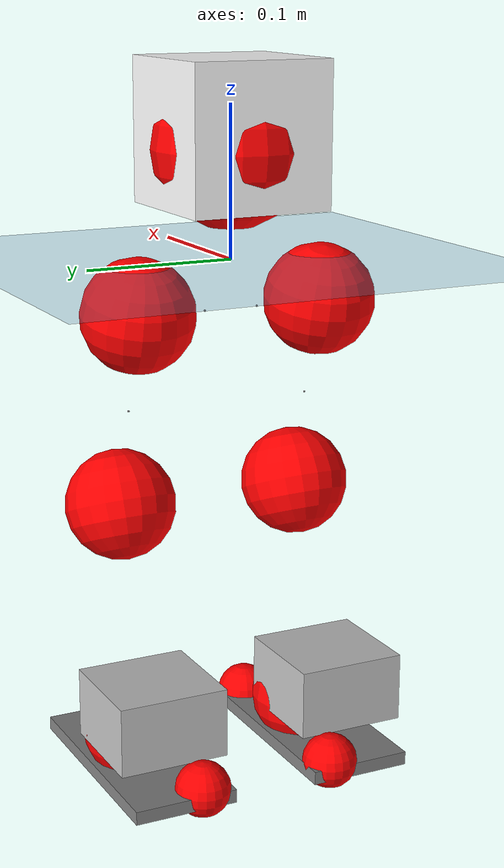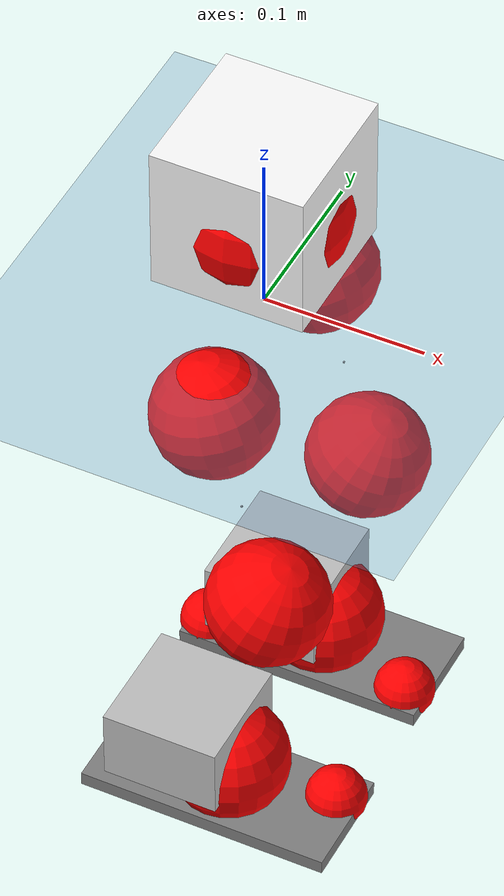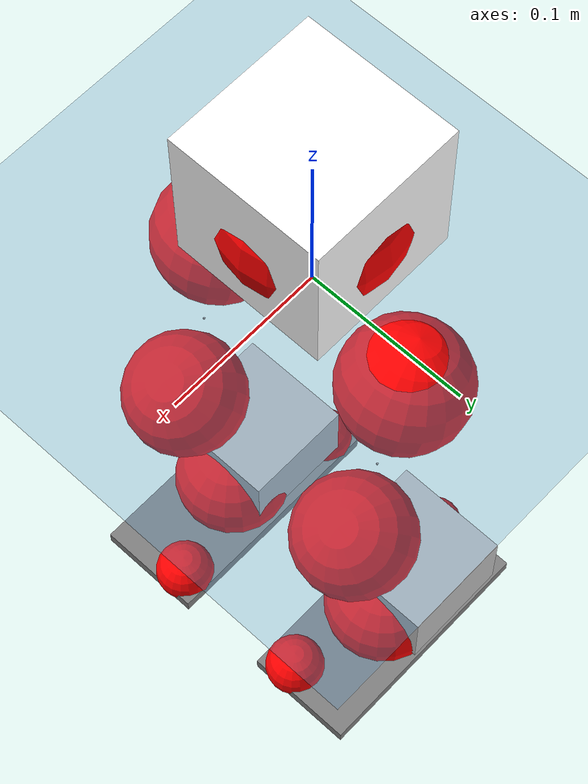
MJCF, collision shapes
<mujoco model="pi_12dof_release_v1">
  <compiler angle="radian" assetdir="assets" balanceinertia="true" inertiafromgeom="false"/>

  <option timestep="0.005" density="1.2" viscosity="2e-05"/>

  <size nkey="1"/>

  <visual>
    <quality shadowsize="8192"/>
    <map shadowclip="0.5"/>
  </visual>

  <default>
    <default class="/">
      <joint armature="0.01" damping="0.01" frictionloss="0.01"/>
      <geom contype="0" conaffinity="0" group="1" solref="-1000 -80"/>
      <site size="0.01 0.005 0.005" group="5"/>
      <general forcelimited="true" biastype="affine" gainprm="20" biasprm="0 -20 -0.5"/>
      <default class="foot">
        <geom size="0.0845 0.036 0.005" type="box" condim="6" group="4" priority="1" friction="0.9 0.2 0.2" solimp="0.015 1 0.005"/>
      </default>
      <default class="reward_collision_sphere">
        <geom group="5" rgba="1 0 0 1"/>
      </default>
    </default>
  </default>

  <asset>
    <texture type="skybox" colorspace="auto" name="//unnamed_texture_0" builtin="gradient" rgb1="0.95 0.95 0.95" rgb2="0.95 0.95 0.95" width="100" height="600"/>
    <texture type="2d" colorspace="auto" name="texplane" builtin="checker" rgb1="0.345 0.575 0.748" rgb2="0.345 0.575 0.748" markrgb="1 1 1" width="512" height="512"/>
    <material name="MatPlane" class="/" texture="texplane" texuniform="true" texrepeat="2 2" specular="0.9"/>
    <mesh name="baselink_1" class="/" file="baselink_1.STL"/>
    <mesh name="r_hip_pitch_link" class="/" file="r_hip_pitch_link.STL"/>
    <mesh name="r_hip_roll_link" class="/" file="r_hip_roll_link.STL"/>
    <mesh name="r_thigh_link" class="/" file="r_thigh_link.STL"/>
    <mesh name="r_calf_link" class="/" file="r_calf_link.STL"/>
    <mesh name="r_ankle_pitch_link" class="/" file="r_ankle_pitch_link.STL"/>
    <mesh name="r_ankle_roll_link" class="/" file="r_ankle_roll_link.STL"/>
    <mesh name="l_hip_pitch_link" class="/" file="l_hip_pitch_link.STL"/>
    <mesh name="l_hip_roll_link" class="/" file="l_hip_roll_link.STL"/>
    <mesh name="l_thigh_link" class="/" file="l_thigh_link.STL"/>
    <mesh name="l_calf_link" class="/" file="l_calf_link.STL"/>
    <mesh name="l_ankle_pitch_link" class="/" file="l_ankle_pitch_link.STL"/>
    <mesh name="l_ankle_roll_link" class="/" file="l_ankle_roll_link.STL"/>
  </asset>

  <worldbody>
    <geom name="floor" class="/" size="100 100 0.125" type="plane" group="0" material="MatPlane"/>
    <light name="toplight_shadow" class="/" pos="0 0 5" dir="0.0990148 0.0990148 -0.990148" type="directional" ambient="0.04 0.04 0.04" diffuse="0.55 0.55 0.55" specular="0.12 0.12 0.12"/>
    <light name="toplight_fill" class="/" pos="0 0 5" dir="0.0990148 0.0990148 -0.990148" type="directional" castshadow="false" ambient="0.04 0.04 0.04" diffuse="0.3 0.3 0.3" specular="0.08 0.08 0.08"/>
    <body name="trunk" pos="-0.000142651 2.38864e-05 0.000794061" quat="1 -1.69546e-05 6.16564e-06 -2.37821e-05">
      <inertial pos="0.0027312 -0.000965953 0.0400591" quat="0.695071 0.0094093 0.00890711 0.718824" mass="1.80173" diaginertia="0.00839307 0.00405476 0.00437588"/>
      <joint name="//unnamed_joint_0" type="free"/>
      <geom name="//unnamed_geom_1" class="/" type="mesh" density="0" rgba="1 1 1 1" mesh="baselink_1"/>
      <geom name="//unnamed_geom_2" class="/" size="0.0472264 0.0472264 0.0472264" pos="0 0 0.0807897" type="box" rgba="1 1 1 1"/>
      <geom name="//unnamed_geom_3" class="reward_collision_sphere" size="0.051949" pos="0 0 0.070691"/>
      <site name="imu" class="/" pos="-0.00429287 -0.00145065 0.000103178" size="0.00944527"/>
      <camera name="track" class="/" pos="0 -1.70459 0" quat="0.707107 0.707107 0 0" mode="trackcom"/>
      <camera name="ego_camera" class="/" pos="0.0728561 0 0.181777" quat="-0.5 -0.5 0.5 0.5"/>
      <body name="r_hip_pitch_link" pos="0.000995728 -0.0195143 -0.0331449" quat="0.992191 0.000341314 -0.124723 -0.000134092">
        <inertial pos="0.00123301 -0.0468406 0.000269035" quat="-0.0218228 0.706162 -0.0319194 0.706994" mass="0.311753" diaginertia="9.37058e-05 4.41068e-05 8.74824e-05"/>
        <joint name="r_hip_pitch_joint" class="/" pos="0 0 0" axis="6.70833e-05 -1 0.000315813" range="-1.7494 1.24126" armature="0.00965235" damping="0.00323798" frictionloss="0.00951312"/>
        <geom name="//unnamed_geom_4" class="/" type="mesh" density="0" rgba="0.75294 0.75294 0.75294 1" mesh="r_hip_pitch_link"/>
        <geom name="//unnamed_geom_5" class="/" size="0.000472264 0.000472264 0.000472264" type="box" rgba="0.75294 0.75294 0.75294 1"/>
        <body name="r_hip_roll_link" pos="0.000812806 -0.0471102 0.000681963" quat="1 7.01766e-05 -6.88127e-05 -2.13154e-05">
          <inertial pos="-0.00197929 -2.66244e-05 -0.0621532" quat="0.705344 -0.0794222 -0.083574 0.699427" mass="0.322435" diaginertia="0.000287142 0.000124622 0.000133606"/>
          <joint name="r_hip_roll_joint" class="/" pos="0 0 0" axis="-0.999991 -0.00296496 -0.00298722" range="-0.122966 0.494968" armature="0.00970782" damping="0.0087598" frictionloss="0.00912527"/>
          <geom name="//unnamed_geom_6" class="/" type="mesh" density="0" rgba="0.75294 0.75294 0.75294 1" mesh="r_hip_roll_link"/>
          <geom name="//unnamed_geom_7" class="/" size="0.000472264 0.000472264 0.000472264" type="box" rgba="0.75294 0.75294 0.75294 1"/>
          <geom name="//unnamed_geom_8" class="reward_collision_sphere" size="0.0377811"/>
          <body name="r_thigh_link" pos="-0.000857949 0.00105928 -0.0702033" quat="1 -4.87245e-05 -3.42411e-05 3.01609e-05">
            <inertial pos="7.53375e-05 0.00105631 -0.0483895" quat="0.73757 0.675269 -0.00168457 0.000298224" mass="0.0963182" diaginertia="0.000109371 4.26351e-05 6.11363e-05"/>
            <joint name="r_thigh_joint" class="/" pos="0 0 0" axis="-0.00124691 -0.00231489 -0.999997" range="-0.306008 0.596738" armature="0.00962215" damping="0.00458077" frictionloss="0.0096458"/>
            <geom name="//unnamed_geom_9" class="/" type="mesh" density="0" rgba="0.75294 0.75294 0.75294 1" mesh="r_thigh_link"/>
            <geom name="//unnamed_geom_10" class="/" size="0.000472264 0.000472264 0.000472264" type="box" rgba="0.75294 0.75294 0.75294 1"/>
            <body name="r_calf_link" pos="0.000337562 -0.00226636 -0.0710672" quat="0.947654 -0.000246661 0.319298 -0.000112453">
              <inertial pos="-0.000454995 -0.000665641 -0.0707978" quat="0.999978 -0.00372913 -0.000228666 0.00542637" mass="0.674601" diaginertia="0.0030346 0.00153833 0.000181432"/>
              <joint name="r_calf_joint" class="/" pos="0 0 0" axis="-0.0040789 -0.999991 -0.00117784" range="-1.64627 0.629601" armature="0.00985854" damping="0.00367486" frictionloss="0.00981666"/>
              <geom name="//unnamed_geom_11" class="/" type="mesh" density="0" rgba="0.75294 0.75294 0.75294 1" mesh="r_calf_link"/>
              <geom name="//unnamed_geom_12" class="/" size="0.000472264 0.000472264 0.000472264" type="box" rgba="0.75294 0.75294 0.75294 1"/>
              <geom name="//unnamed_geom_13" class="reward_collision_sphere" size="0.0377811"/>
              <body name="r_ankle_pitch_link" pos="0.000628096 0.00197153 -0.140784" quat="0.980058 3.35449e-05 -0.19871 3.46263e-05">
                <inertial pos="0.00466364 0.00344885 -0.000138655" quat="0.00212138 0.707279 -0.00265455 0.706926" mass="0.148475" diaginertia="0.000267679 9.93367e-05 0.000125612"/>
                <joint name="r_ankle_pitch_joint" class="/" pos="0 0 0" axis="0.000554448 -1 -1.03252e-05" range="-1.30588 0.511225" armature="0.00923519" damping="0.00359955" frictionloss="0.00947614"/>
                <geom name="//unnamed_geom_14" class="/" type="mesh" density="0" rgba="0.75294 0.75294 0.75294 1" mesh="r_ankle_pitch_link"/>
                <geom name="//unnamed_geom_15" class="/" size="0.0368366 0.0377811 0.0236132" type="box" rgba="0.75294 0.75294 0.75294 1"/>
                <body name="r_ankle_roll_link" pos="0.0740036 0.00282355 -0.000332441" quat="1 9.41421e-05 -0.000130708 3.55359e-05">
                  <inertial pos="-0.0231401 0.000133871 -0.0144891" quat="0.563385 0.428397 0.434313 0.557177" mass="0.43438" diaginertia="0.00096843 0.000465601 0.000295952"/>
                  <joint name="r_ankle_roll_joint" class="/" pos="0 0 0" axis="-1 0.00045692 -0.000608207" range="-0.134554 0.140793" armature="0.00926424" damping="0.00239851" frictionloss="0.00938873"/>
                  <geom name="//unnamed_geom_16" class="/" type="mesh" density="0" rgba="0.75294 0.75294 0.75294 1" mesh="r_ankle_roll_link"/>
                  <geom name="//unnamed_geom_17" class="/" type="mesh" rgba="0.75294 0.75294 0.75294 1" mesh="r_ankle_roll_link"/>
                  <geom name="right_foot" class="foot" size="0.080026 0.0353919 0.00460233" pos="-0.0495422 0 -0.0444343"/>
                  <geom name="//unnamed_geom_19" class="reward_collision_sphere" size="0.0377811" pos="-0.0485707 0 -0.0201974"/>
                  <geom name="//unnamed_geom_20" class="reward_collision_sphere" size="0.0188905" pos="0.0145712 0.0170459 -0.0403949"/>
                  <geom name="//unnamed_geom_21" class="reward_collision_sphere" size="0.0188905" pos="-0.11657 0.0170459 -0.0403949"/>
                  <site name="right_foot" class="foot" pos="-0.0495422 0 -0.0444343" size="0.00944527"/>
                </body>
              </body>
            </body>
          </body>
        </body>
      </body>
      <body name="l_hip_pitch_link" pos="-0.000536424 0.0190589 -0.0327574" quat="0.992196 -8.05458e-05 -0.124686 -7.84439e-05">
        <inertial pos="5.5536e-05 0.0458786 -0.000367985" quat="-0.0421741 0.706907 0.0315249 0.705344" mass="0.326479" diaginertia="0.000111452 4.77733e-05 0.000105996"/>
        <joint name="l_hip_pitch_joint" class="/" pos="0 0 0" axis="0.00547562 0.999985 -0.000227002" range="-1.24806 1.76384" armature="0.00969517" damping="0.00411795" frictionloss="0.0092164"/>
        <geom name="//unnamed_geom_22" class="/" type="mesh" density="0" rgba="0.75294 0.75294 0.75294 1" mesh="l_hip_pitch_link"/>
        <geom name="//unnamed_geom_23" class="/" size="0.000472264 0.000472264 0.000472264" type="box" rgba="0.75294 0.75294 0.75294 1"/>
        <body name="l_hip_roll_link" pos="0.00132208 0.0465682 6.21872e-05" quat="1 4.83358e-05 7.41692e-06 -2.84929e-05">
          <inertial pos="-0.00145188 -0.000450132 -0.0623915" quat="0.699067 -0.0763341 -0.077926 0.706686" mass="0.327165" diaginertia="0.000288322 0.000126301 0.000135217"/>
          <joint name="l_hip_roll_joint" class="/" pos="0 0 0" axis="-0.999988 -0.00498561 -0.000283175" range="-0.484667 0.0981072" armature="0.00960824" damping="0.00953503" frictionloss="0.00943495"/>
          <geom name="//unnamed_geom_24" class="/" type="mesh" density="0" rgba="0.75294 0.75294 0.75294 1" mesh="l_hip_roll_link"/>
          <geom name="//unnamed_geom_25" class="/" size="0.000472264 0.000472264 0.000472264" type="box" rgba="0.75294 0.75294 0.75294 1"/>
          <geom name="//unnamed_geom_26" class="reward_collision_sphere" size="0.0377811"/>
          <body name="l_thigh_link" pos="0.00106496 -8.95193e-05 -0.0696882" quat="1 0.000198313 0.000131451 3.59116e-05">
            <inertial pos="0.00039797 -0.00178932 -0.0477187" quat="0.67426 0.738473 -0.00559849 0.000419767" mass="0.0950823" diaginertia="0.000107749 4.2675e-05 6.01816e-05"/>
            <joint name="l_thigh_joint" class="/" pos="0 0 0" axis="-0.00209695 0.000803306 -0.999997" range="-0.582526 0.279441" armature="0.00898879" damping="0.00215272" frictionloss="0.00901986"/>
            <geom name="//unnamed_geom_27" class="/" type="mesh" density="0" rgba="0.75294 0.75294 0.75294 1" mesh="l_thigh_link"/>
            <geom name="//unnamed_geom_28" class="/" size="0.000472264 0.000472264 0.000472264" type="box" rgba="0.75294 0.75294 0.75294 1"/>
            <body name="l_calf_link" pos="-0.00119636 8.25483e-06 -0.0706891" quat="0.947707 -0.000145169 0.319142 3.18078e-05">
              <inertial pos="-9.4711e-05 0.00248925 -0.0713113" quat="0.99998 0.00288995 0.000894333 0.00563326" mass="0.693174" diaginertia="0.0030792 0.00158892 0.000183688"/>
              <joint name="l_calf_joint" class="/" pos="0 0 0" axis="0.000864041 1 -0.000477663" stiffness="0.00415365" range="-0.654363 1.62934" armature="0.00950647" damping="0.0082069" frictionloss="0.00941148"/>
              <geom name="//unnamed_geom_29" class="/" type="mesh" density="0" rgba="0.75294 0.75294 0.75294 1" mesh="l_calf_link"/>
              <geom name="//unnamed_geom_30" class="/" size="0.000472264 0.000472264 0.000472264" type="box" rgba="0.75294 0.75294 0.75294 1"/>
              <geom name="//unnamed_geom_31" class="reward_collision_sphere" size="0.0377811"/>
              <body name="l_ankle_pitch_link" pos="0.00116975 0.00169949 -0.14109" quat="0.980068 0.000150007 -0.198664 0.000136983">
                <inertial pos="0.00405794 -0.00118167 0.000226258" quat="-0.0022526 0.707171 0.00257208 0.707034" mass="0.145022" diaginertia="0.00026313 9.82028e-05 0.000124924"/>
                <joint name="l_ankle_pitch_joint" class="/" pos="0 0 0" axis="0.00143192 0.999995 -0.00267593" range="-0.507771 1.30711" armature="0.00948941" damping="0.00578961" frictionloss="0.0100184"/>
                <geom name="//unnamed_geom_32" class="/" type="mesh" density="0" rgba="0.75294 0.75294 0.75294 1" mesh="l_ankle_pitch_link"/>
                <geom name="//unnamed_geom_33" class="/" size="0.0368366 0.0377811 0.0236132" type="box" rgba="0.75294 0.75294 0.75294 1"/>
                <body name="l_ankle_roll_link" pos="0.0733004 0.000114985 0.000103876" quat="1 0.000280693 0.000115913 0.00033136">
                  <inertial pos="-0.0230979 -0.000426088 -0.0148203" quat="0.560352 0.430764 0.433153 0.559308" mass="0.436423" diaginertia="0.000987066 0.00046066 0.000295812"/>
                  <joint name="l_ankle_roll_joint" class="/" pos="0 0 0" axis="-1 0.000254452 0.000741423" range="-0.152202 0.151251" armature="0.00942951" damping="0.00839118" frictionloss="0.00915037"/>
                  <geom name="//unnamed_geom_34" class="/" type="mesh" density="0" rgba="0.75294 0.75294 0.75294 1" mesh="l_ankle_roll_link"/>
                  <geom name="//unnamed_geom_35" class="/" type="mesh" rgba="0.75294 0.75294 0.75294 1" mesh="l_ankle_roll_link"/>
                  <geom name="left_foot" class="foot" size="0.0791219 0.0358097 0.00457966" pos="-0.0495422 0 -0.0444343"/>
                  <geom name="//unnamed_geom_37" class="reward_collision_sphere" size="0.0377811" pos="-0.0485707 0 -0.0201974"/>
                  <geom name="//unnamed_geom_38" class="reward_collision_sphere" size="0.0188905" pos="0.0145712 -0.0170459 -0.0403949"/>
                  <geom name="//unnamed_geom_39" class="reward_collision_sphere" size="0.0188905" pos="-0.11657 -0.0170459 -0.0403949"/>
                  <site name="left_foot" class="foot" pos="-0.0495422 0 -0.0444343" size="0.00944527"/>
                </body>
              </body>
            </body>
          </body>
        </body>
      </body>
    </body>
  </worldbody>

  <contact>
    <pair class="/" geom1="floor" geom2="right_foot" name="//unnamed_contact_1"/>
    <pair class="/" geom1="floor" geom2="left_foot" name="//unnamed_contact_0"/>
  </contact>

  <actuator>
    <general name="r_hip_pitch_joint" class="/" joint="r_hip_pitch_joint" forcerange="-19.7046 19.7046" gainprm="18.8483" biasprm="0 -18.8483 -0.479811"/>
    <general name="r_hip_roll_joint" class="/" joint="r_hip_roll_joint" forcerange="-20.0528 20.0528" gainprm="18.8483" biasprm="0 -18.8483 -0.479811"/>
    <general name="r_thigh_joint" class="/" joint="r_thigh_joint" forcerange="-19.4267 19.4267" gainprm="18.8483" biasprm="0 -18.8483 -0.479811"/>
    <general name="r_calf_joint" class="/" joint="r_calf_joint" forcerange="-19.7949 19.7949" gainprm="18.8483" biasprm="0 -18.8483 -0.479811"/>
    <general name="r_ankle_pitch_joint" class="/" joint="r_ankle_pitch_joint" forcerange="-20.039 20.039" gainprm="18.8483" biasprm="0 -18.8483 -0.479811"/>
    <general name="r_ankle_roll_joint" class="/" joint="r_ankle_roll_joint" forcerange="-19.7812 19.7812" gainprm="18.8483" biasprm="0 -18.8483 -0.479811"/>
    <general name="l_hip_pitch_joint" class="/" joint="l_hip_pitch_joint" forcerange="-19.613 19.613" gainprm="18.8483" biasprm="0 -18.8483 -0.479811"/>
    <general name="l_hip_roll_joint" class="/" joint="l_hip_roll_joint" forcerange="-20.512 20.512" gainprm="18.8483" biasprm="0 -18.8483 -0.479811"/>
    <general name="l_thigh_joint" class="/" joint="l_thigh_joint" forcerange="-19.5411 19.5411" gainprm="18.8483" biasprm="0 -18.8483 -0.479811"/>
    <general name="l_calf_joint" class="/" joint="l_calf_joint" forcerange="-20.5017 20.5017" gainprm="18.8483" biasprm="0 -18.8483 -0.479811"/>
    <general name="l_ankle_pitch_joint" class="/" joint="l_ankle_pitch_joint" forcerange="-19.3316 19.3316" gainprm="18.8483" biasprm="0 -18.8483 -0.479811"/>
    <general name="l_ankle_roll_joint" class="/" joint="l_ankle_roll_joint" forcerange="-19.8452 19.8452" gainprm="18.8483" biasprm="0 -18.8483 -0.479811"/>
  </actuator>

  <sensor>
    <gyro site="imu" name="imu_angular_velocity"/>
    <velocimeter site="imu" name="imu_linear_velocity"/>
    <framelinvel objtype="site" objname="left_foot" name="left_foot_global_linear_velocity"/>
    <framelinvel objtype="site" objname="right_foot" name="right_foot_global_linear_velocity"/>
  </sensor>

  <keyframe>
    <key name="home" qpos="0 0 0.291 1 0 0 0 0.4 0 0 -0.8 0.4 0 -0.4 0 0 0.8 -0.4 0"/>
  </keyframe>
</mujoco>
